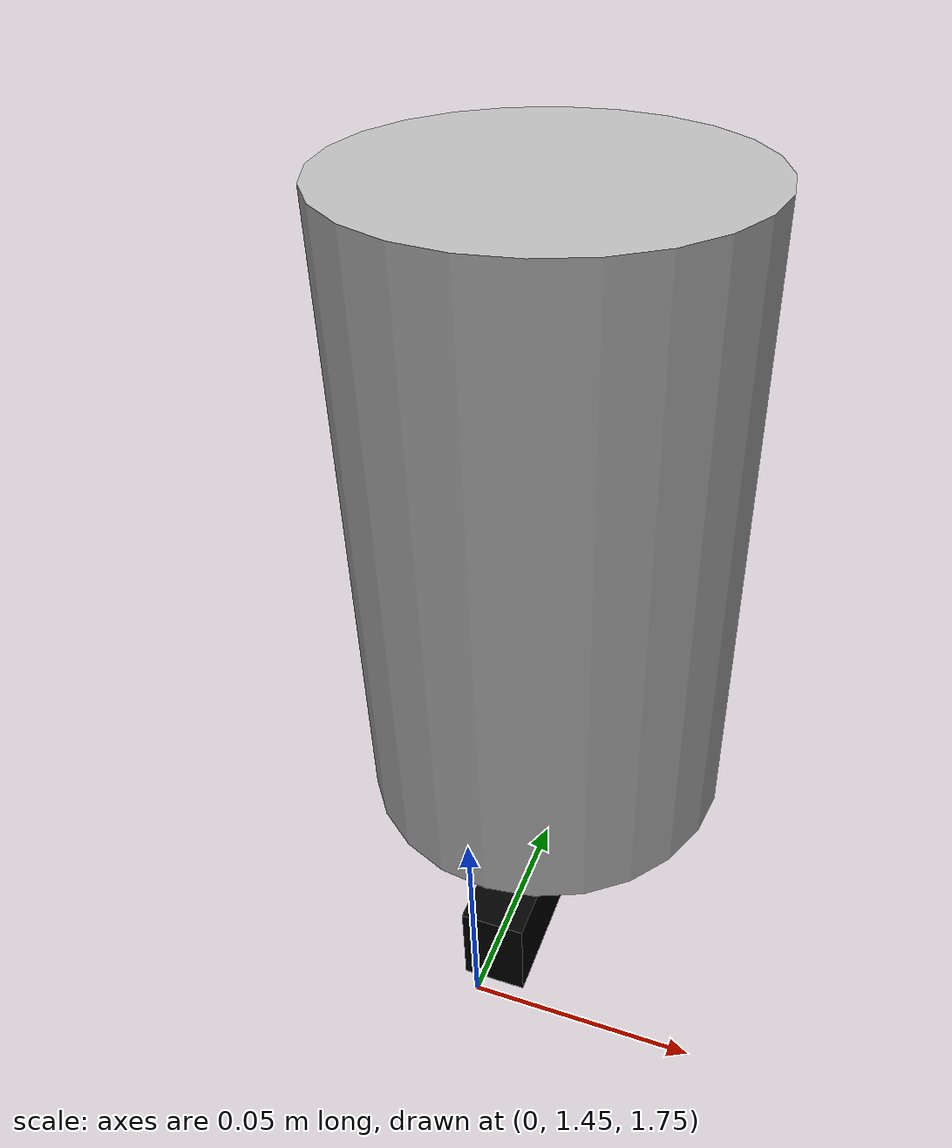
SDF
<?xml version="1.0"?>
<sdf version="1.5">

  <model name="autocar">
    <pose>0 0 0.0 0 0 0</pose>

    <link name="odometry" />

    <joint name="velodyne_joint" type="fixed">
      <parent>base_link</parent>
      <child>velodyne</child>
      <pose>0 1.5 1.85 0 0 0</pose>
      <axis>
        <xyz>0 0 1</xyz>
      </axis>
    </joint>

    <joint name="odom_joint" type="fixed">
      <parent>odometry</parent>
      <child>base_link</child>
      <pose>0 1.5 0 0 0 0</pose>
      <axis>
        <xyz>0 0 1</xyz>
      </axis>
    </joint>

    <joint name="front_camera_joint" type="fixed">
      <parent>base_link</parent>
      <child>front_camera_link</child>
      <pose>0 1.5 1.75 0 0 0</pose>
      <axis>
        <xyz>0 0 1</xyz>
      </axis>
    </joint>

    <link name='base_link' />

  <link name="front_camera_link">

  <visual name="camera_visual">
    <pose relative_to='front_camera_joint'> 0 0 0 0 0 0 </pose>
    <geometry>
      <box>
        <size>0.015 0.08 0.022</size>
      </box>
    </geometry>
    <material>
      <ambient>0 0 0 1.0</ambient>
      <diffuse>0 0 0 1.0</diffuse>
      <specular>0.0 0.0 0.0 1.0</specular>
      <emissive>0.0 0.0 0.0 1.0</emissive>
    </material>
  </visual>

  </link>
  <link name="velodyne">
    <pose>0 0 0 0 0 0</pose>

      <inertial>
        <pose relative_to='velodyne_joint'> 0 0 0 0 0 0 </pose>
        <mass>1.01</mass>
        <inertia>
          <ixx>0.00219251</ixx>
          <ixy>0</ixy>
          <ixz>0</ixz>
          <iyy>0.00219251</iyy>
          <iyz>0</iyz>
          <izz>0.000910464</izz>
        </inertia>
      </inertial>

      <collision name='base_link_fixed_joint_lump__velodyne2_base_link_collision'>
         <pose relative_to='velodyne_joint'> 0 0 0 0 0 0 </pose>
        <geometry>
          <cylinder>
            <length>0.14424</length>
            <radius>0.04267</radius>
          </cylinder>
        </geometry>
      </collision>

      <visual name='base_link_fixed_joint_lump__velodyne2_base_link_visual'>
        <pose relative_to='velodyne_joint'> 0 0 0 0 0 0 </pose>
        <geometry>
          <cylinder>
            <length>0.14424</length>
            <radius>0.04267</radius>
          </cylinder>
        </geometry>
      </visual>
    </link>

  </model>

</sdf>
